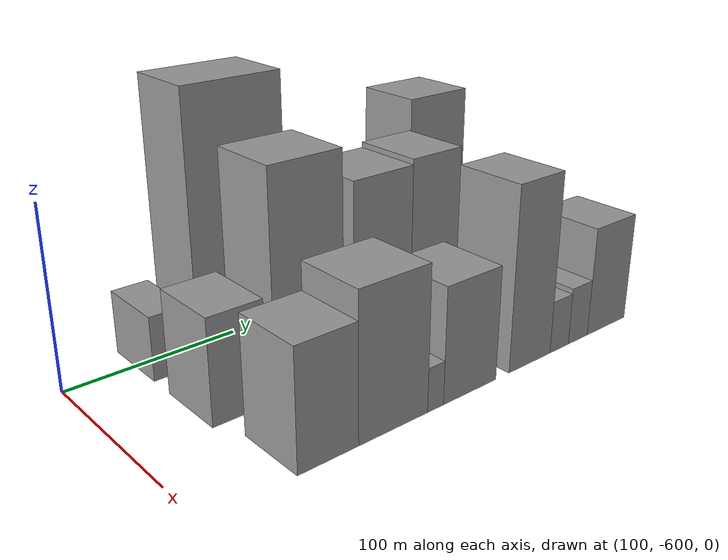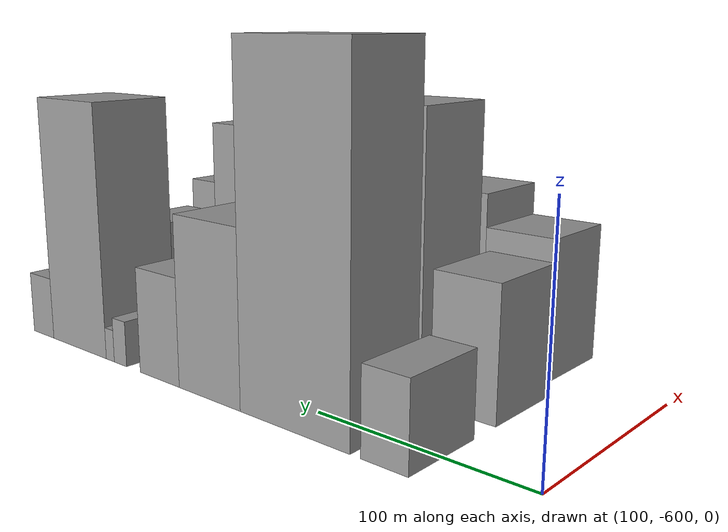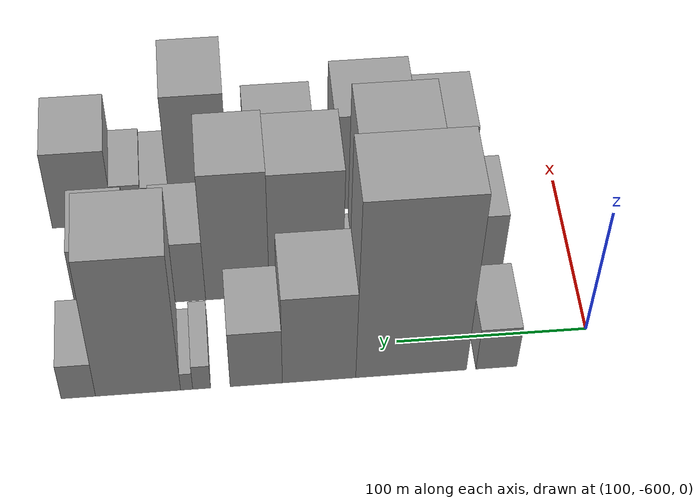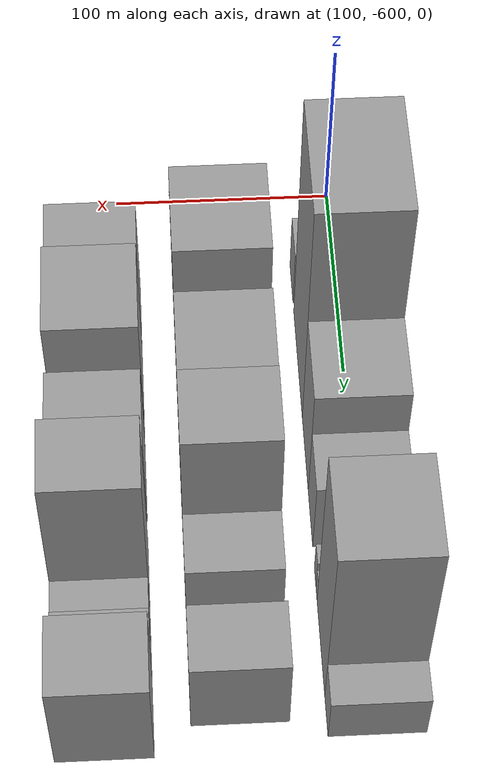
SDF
<sdf version="1.6">
 <world name="default">
  <model name="building_1">
   <static>1</static>
   <pose>100.0000 -549.3351 0 0.000000 0.000000 0.000000</pose>
   <link name="link">
    <pose>0 0 18.00 0 0 0</pose>
    <collision name="collision"><geometry><box><size>40.0000 21.3298 36.0000</size></box></geometry></collision>
    <visual name="visual">
     <cast_shadows>0</cast_shadows>
     <geometry><box><size>40.0000 21.3298 36.0000</size></box></geometry>
     <material>
      <script>
       <uri>model://grey_wall/materials/scripts</uri>
       <uri>model://grey_wall/materials/textures</uri>
       <name>vrc/grey_wall</name>
      </script>
     </material>
    </visual>
   </link>
  </model>
  <model name="building_2">
   <static>1</static>
   <pose>100.0000 -504.9209 0 0.000000 0.000000 0.000000</pose>
   <link name="link">
    <pose>0 0 73.50 0 0 0</pose>
    <collision name="collision"><geometry><box><size>40.0000 57.4987 147.0000</size></box></geometry></collision>
    <visual name="visual">
     <cast_shadows>0</cast_shadows>
     <geometry><box><size>40.0000 57.4987 147.0000</size></box></geometry>
     <material>
      <script>
       <uri>model://grey_wall/materials/scripts</uri>
       <uri>model://grey_wall/materials/textures</uri>
       <name>vrc/grey_wall</name>
      </script>
     </material>
    </visual>
   </link>
  </model>
  <model name="building_3">
   <static>1</static>
   <pose>100.0000 -457.2303 0 0.000000 0.000000 0.000000</pose>
   <link name="link">
    <pose>0 0 37.50 0 0 0</pose>
    <collision name="collision"><geometry><box><size>40.0000 37.8825 75.0000</size></box></geometry></collision>
    <visual name="visual">
     <cast_shadows>0</cast_shadows>
     <geometry><box><size>40.0000 37.8825 75.0000</size></box></geometry>
     <material>
      <script>
       <uri>model://grey_wall/materials/scripts</uri>
       <uri>model://grey_wall/materials/textures</uri>
       <name>vrc/grey_wall</name>
      </script>
     </material>
    </visual>
   </link>
  </model>
  <model name="building_4">
   <static>1</static>
   <pose>100.0000 -424.8399 0 0.000000 0.000000 0.000000</pose>
   <link name="link">
    <pose>0 0 24.00 0 0 0</pose>
    <collision name="collision"><geometry><box><size>40.0000 26.8981 48.0000</size></box></geometry></collision>
    <visual name="visual">
     <cast_shadows>0</cast_shadows>
     <geometry><box><size>40.0000 26.8981 48.0000</size></box></geometry>
     <material>
      <script>
       <uri>model://grey_wall/materials/scripts</uri>
       <uri>model://grey_wall/materials/textures</uri>
       <name>vrc/grey_wall</name>
      </script>
     </material>
    </visual>
   </link>
  </model>
  <model name="building_5">
   <static>1</static>
   <pose>100.0000 -396.7720 0 0.000000 0.000000 0.000000</pose>
   <link name="link">
    <pose>0 0 10.50 0 0 0</pose>
    <collision name="collision"><geometry><box><size>40.0000 9.2377 21.0000</size></box></geometry></collision>
    <visual name="visual">
     <cast_shadows>0</cast_shadows>
     <geometry><box><size>40.0000 9.2377 21.0000</size></box></geometry>
     <material>
      <script>
       <uri>model://grey_wall/materials/scripts</uri>
       <uri>model://grey_wall/materials/textures</uri>
       <name>vrc/grey_wall</name>
      </script>
     </material>
    </visual>
   </link>
  </model>
  <model name="building_6">
   <static>1</static>
   <pose>100.0000 -389.0437 0 0.000000 0.000000 0.000000</pose>
   <link name="link">
    <pose>0 0 7.50 0 0 0</pose>
    <collision name="collision"><geometry><box><size>40.0000 6.2190 15.0000</size></box></geometry></collision>
    <visual name="visual">
     <cast_shadows>0</cast_shadows>
     <geometry><box><size>40.0000 6.2190 15.0000</size></box></geometry>
     <material>
      <script>
       <uri>model://grey_wall/materials/scripts</uri>
       <uri>model://grey_wall/materials/textures</uri>
       <name>vrc/grey_wall</name>
      </script>
     </material>
    </visual>
   </link>
  </model>
  <model name="building_7">
   <static>1</static>
   <pose>100.0000 -364.2086 0 0.000000 0.000000 0.000000</pose>
   <link name="link">
    <pose>0 0 58.50 0 0 0</pose>
    <collision name="collision"><geometry><box><size>40.0000 43.4513 117.0000</size></box></geometry></collision>
    <visual name="visual">
     <cast_shadows>0</cast_shadows>
     <geometry><box><size>40.0000 43.4513 117.0000</size></box></geometry>
     <material>
      <script>
       <uri>model://grey_wall/materials/scripts</uri>
       <uri>model://grey_wall/materials/textures</uri>
       <name>vrc/grey_wall</name>
      </script>
     </material>
    </visual>
   </link>
  </model>
  <model name="building_8">
   <static>1</static>
   <pose>100.0000 -333.7156 0 0.000000 0.000000 0.000000</pose>
   <link name="link">
    <pose>0 0 15.00 0 0 0</pose>
    <collision name="collision"><geometry><box><size>40.0000 17.5347 30.0000</size></box></geometry></collision>
    <visual name="visual">
     <cast_shadows>0</cast_shadows>
     <geometry><box><size>40.0000 17.5347 30.0000</size></box></geometry>
     <material>
      <script>
       <uri>model://grey_wall/materials/scripts</uri>
       <uri>model://grey_wall/materials/textures</uri>
       <name>vrc/grey_wall</name>
      </script>
     </material>
    </visual>
   </link>
  </model>
  <model name="building_36">
   <static>1</static>
   <pose>155.0000 -544.5624 0 0.000000 0.000000 0.000000</pose>
   <link name="link">
    <pose>0 0 28.50 0 0 0</pose>
    <collision name="collision"><geometry><box><size>40.0000 30.8753 57.0000</size></box></geometry></collision>
    <visual name="visual">
     <cast_shadows>0</cast_shadows>
     <geometry><box><size>40.0000 30.8753 57.0000</size></box></geometry>
     <material>
      <script>
       <uri>model://grey_wall/materials/scripts</uri>
       <uri>model://grey_wall/materials/textures</uri>
       <name>vrc/grey_wall</name>
      </script>
     </material>
    </visual>
   </link>
  </model>
  <model name="building_37">
   <static>1</static>
   <pose>155.0000 -502.6517 0 0.000000 0.000000 0.000000</pose>
   <link name="link">
    <pose>0 0 60.00 0 0 0</pose>
    <collision name="collision"><geometry><box><size>40.0000 42.9461 120.0000</size></box></geometry></collision>
    <visual name="visual">
     <cast_shadows>0</cast_shadows>
     <geometry><box><size>40.0000 42.9461 120.0000</size></box></geometry>
     <material>
      <script>
       <uri>model://grey_wall/materials/scripts</uri>
       <uri>model://grey_wall/materials/textures</uri>
       <name>vrc/grey_wall</name>
      </script>
     </material>
    </visual>
   </link>
  </model>
  <model name="building_38">
   <static>1</static>
   <pose>155.0000 -477.8783 0 0.000000 0.000000 0.000000</pose>
   <link name="link">
    <pose>0 0 7.50 0 0 0</pose>
    <collision name="collision"><geometry><box><size>40.0000 6.6005 15.0000</size></box></geometry></collision>
    <visual name="visual">
     <cast_shadows>0</cast_shadows>
     <geometry><box><size>40.0000 6.6005 15.0000</size></box></geometry>
     <material>
      <script>
       <uri>model://grey_wall/materials/scripts</uri>
       <uri>model://grey_wall/materials/textures</uri>
       <name>vrc/grey_wall</name>
      </script>
     </material>
    </visual>
   </link>
  </model>
  <model name="building_39">
   <static>1</static>
   <pose>155.0000 -454.9827 0 0.000000 0.000000 0.000000</pose>
   <link name="link">
    <pose>0 0 51.00 0 0 0</pose>
    <collision name="collision"><geometry><box><size>40.0000 39.1908 102.0000</size></box></geometry></collision>
    <visual name="visual">
     <cast_shadows>0</cast_shadows>
     <geometry><box><size>40.0000 39.1908 102.0000</size></box></geometry>
     <material>
      <script>
       <uri>model://grey_wall/materials/scripts</uri>
       <uri>model://grey_wall/materials/textures</uri>
       <name>vrc/grey_wall</name>
      </script>
     </material>
    </visual>
   </link>
  </model>
  <model name="building_40">
   <static>1</static>
   <pose>155.0000 -418.3287 0 0.000000 0.000000 0.000000</pose>
   <link name="link">
    <pose>0 0 52.50 0 0 0</pose>
    <collision name="collision"><geometry><box><size>40.0000 34.1171 105.0000</size></box></geometry></collision>
    <visual name="visual">
     <cast_shadows>0</cast_shadows>
     <geometry><box><size>40.0000 34.1171 105.0000</size></box></geometry>
     <material>
      <script>
       <uri>model://grey_wall/materials/scripts</uri>
       <uri>model://grey_wall/materials/textures</uri>
       <name>vrc/grey_wall</name>
      </script>
     </material>
    </visual>
   </link>
  </model>
  <model name="building_41">
   <static>1</static>
   <pose>155.0000 -387.9617 0 0.000000 0.000000 0.000000</pose>
   <link name="link">
    <pose>0 0 25.50 0 0 0</pose>
    <collision name="collision"><geometry><box><size>40.0000 26.6170 51.0000</size></box></geometry></collision>
    <visual name="visual">
     <cast_shadows>0</cast_shadows>
     <geometry><box><size>40.0000 26.6170 51.0000</size></box></geometry>
     <material>
      <script>
       <uri>model://grey_wall/materials/scripts</uri>
       <uri>model://grey_wall/materials/textures</uri>
       <name>vrc/grey_wall</name>
      </script>
     </material>
    </visual>
   </link>
  </model>
  <model name="building_42">
   <static>1</static>
   <pose>155.0000 -366.2097 0 0.000000 0.000000 0.000000</pose>
   <link name="link">
    <pose>0 0 12.00 0 0 0</pose>
    <collision name="collision"><geometry><box><size>40.0000 10.8868 24.0000</size></box></geometry></collision>
    <visual name="visual">
     <cast_shadows>0</cast_shadows>
     <geometry><box><size>40.0000 10.8868 24.0000</size></box></geometry>
     <material>
      <script>
       <uri>model://grey_wall/materials/scripts</uri>
       <uri>model://grey_wall/materials/textures</uri>
       <name>vrc/grey_wall</name>
      </script>
     </material>
    </visual>
   </link>
  </model>
  <model name="building_43">
   <static>1</static>
   <pose>155.0000 -346.4759 0 0.000000 0.000000 0.000000</pose>
   <link name="link">
    <pose>0 0 25.50 0 0 0</pose>
    <collision name="collision"><geometry><box><size>40.0000 28.5809 51.0000</size></box></geometry></collision>
    <visual name="visual">
     <cast_shadows>0</cast_shadows>
     <geometry><box><size>40.0000 28.5809 51.0000</size></box></geometry>
     <material>
      <script>
       <uri>model://grey_wall/materials/scripts</uri>
       <uri>model://grey_wall/materials/textures</uri>
       <name>vrc/grey_wall</name>
      </script>
     </material>
    </visual>
   </link>
  </model>
  <model name="building_66">
   <static>1</static>
   <pose>210.0000 -534.8575 0 0.000000 0.000000 0.000000</pose>
   <link name="link">
    <pose>0 0 31.50 0 0 0</pose>
    <collision name="collision"><geometry><box><size>40.0000 34.2849 63.0000</size></box></geometry></collision>
    <visual name="visual">
     <cast_shadows>0</cast_shadows>
     <geometry><box><size>40.0000 34.2849 63.0000</size></box></geometry>
     <material>
      <script>
       <uri>model://grey_wall/materials/scripts</uri>
       <uri>model://grey_wall/materials/textures</uri>
       <name>vrc/grey_wall</name>
      </script>
     </material>
    </visual>
   </link>
  </model>
  <model name="building_67">
   <static>1</static>
   <pose>210.0000 -496.2436 0 0.000000 0.000000 0.000000</pose>
   <link name="link">
    <pose>0 0 39.00 0 0 0</pose>
    <collision name="collision"><geometry><box><size>40.0000 42.9430 78.0000</size></box></geometry></collision>
    <visual name="visual">
     <cast_shadows>0</cast_shadows>
     <geometry><box><size>40.0000 42.9430 78.0000</size></box></geometry>
     <material>
      <script>
       <uri>model://grey_wall/materials/scripts</uri>
       <uri>model://grey_wall/materials/textures</uri>
       <name>vrc/grey_wall</name>
      </script>
     </material>
    </visual>
   </link>
  </model>
  <model name="building_68">
   <static>1</static>
   <pose>210.0000 -469.4652 0 0.000000 0.000000 0.000000</pose>
   <link name="link">
    <pose>0 0 12.00 0 0 0</pose>
    <collision name="collision"><geometry><box><size>40.0000 10.6136 24.0000</size></box></geometry></collision>
    <visual name="visual">
     <cast_shadows>0</cast_shadows>
     <geometry><box><size>40.0000 10.6136 24.0000</size></box></geometry>
     <material>
      <script>
       <uri>model://grey_wall/materials/scripts</uri>
       <uri>model://grey_wall/materials/textures</uri>
       <name>vrc/grey_wall</name>
      </script>
     </material>
    </visual>
   </link>
  </model>
  <model name="building_69">
   <static>1</static>
   <pose>210.0000 -445.6352 0 0.000000 0.000000 0.000000</pose>
   <link name="link">
    <pose>0 0 31.50 0 0 0</pose>
    <collision name="collision"><geometry><box><size>40.0000 37.0464 63.0000</size></box></geometry></collision>
    <visual name="visual">
     <cast_shadows>0</cast_shadows>
     <geometry><box><size>40.0000 37.0464 63.0000</size></box></geometry>
     <material>
      <script>
       <uri>model://grey_wall/materials/scripts</uri>
       <uri>model://grey_wall/materials/textures</uri>
       <name>vrc/grey_wall</name>
      </script>
     </material>
    </visual>
   </link>
  </model>
  <model name="building_70">
   <static>1</static>
   <pose>210.0000 -400.9203 0 0.000000 0.000000 0.000000</pose>
   <link name="link">
    <pose>0 0 51.00 0 0 0</pose>
    <collision name="collision"><geometry><box><size>40.0000 32.3834 102.0000</size></box></geometry></collision>
    <visual name="visual">
     <cast_shadows>0</cast_shadows>
     <geometry><box><size>40.0000 32.3834 102.0000</size></box></geometry>
     <material>
      <script>
       <uri>model://grey_wall/materials/scripts</uri>
       <uri>model://grey_wall/materials/textures</uri>
       <name>vrc/grey_wall</name>
      </script>
     </material>
    </visual>
   </link>
  </model>
  <model name="building_71">
   <static>1</static>
   <pose>210.0000 -377.0530 0 0.000000 0.000000 0.000000</pose>
   <link name="link">
    <pose>0 0 15.00 0 0 0</pose>
    <collision name="collision"><geometry><box><size>40.0000 15.3512 30.0000</size></box></geometry></collision>
    <visual name="visual">
     <cast_shadows>0</cast_shadows>
     <geometry><box><size>40.0000 15.3512 30.0000</size></box></geometry>
     <material>
      <script>
       <uri>model://grey_wall/materials/scripts</uri>
       <uri>model://grey_wall/materials/textures</uri>
       <name>vrc/grey_wall</name>
      </script>
     </material>
    </visual>
   </link>
  </model>
  <model name="building_72">
   <static>1</static>
   <pose>210.0000 -361.1188 0 0.000000 0.000000 0.000000</pose>
   <link name="link">
    <pose>0 0 16.50 0 0 0</pose>
    <collision name="collision"><geometry><box><size>40.0000 16.5173 33.0000</size></box></geometry></collision>
    <visual name="visual">
     <cast_shadows>0</cast_shadows>
     <geometry><box><size>40.0000 16.5173 33.0000</size></box></geometry>
     <material>
      <script>
       <uri>model://grey_wall/materials/scripts</uri>
       <uri>model://grey_wall/materials/textures</uri>
       <name>vrc/grey_wall</name>
      </script>
     </material>
    </visual>
   </link>
  </model>
  <model name="building_73">
   <static>1</static>
   <pose>210.0000 -336.0107 0 0.000000 0.000000 0.000000</pose>
   <link name="link">
    <pose>0 0 31.50 0 0 0</pose>
    <collision name="collision"><geometry><box><size>40.0000 33.6989 63.0000</size></box></geometry></collision>
    <visual name="visual">
     <cast_shadows>0</cast_shadows>
     <geometry><box><size>40.0000 33.6989 63.0000</size></box></geometry>
     <material>
      <script>
       <uri>model://grey_wall/materials/scripts</uri>
       <uri>model://grey_wall/materials/textures</uri>
       <name>vrc/grey_wall</name>
      </script>
     </material>
    </visual>
   </link>
  </model>
 </world>
</sdf>
